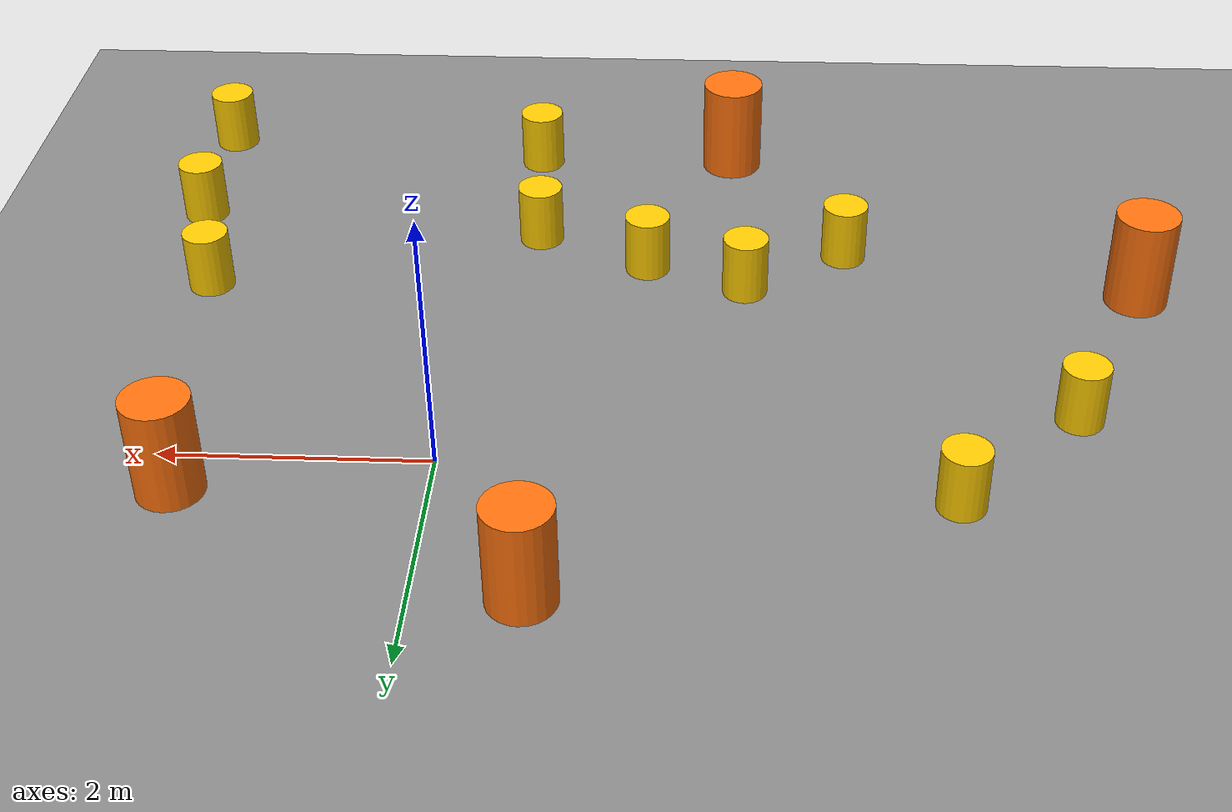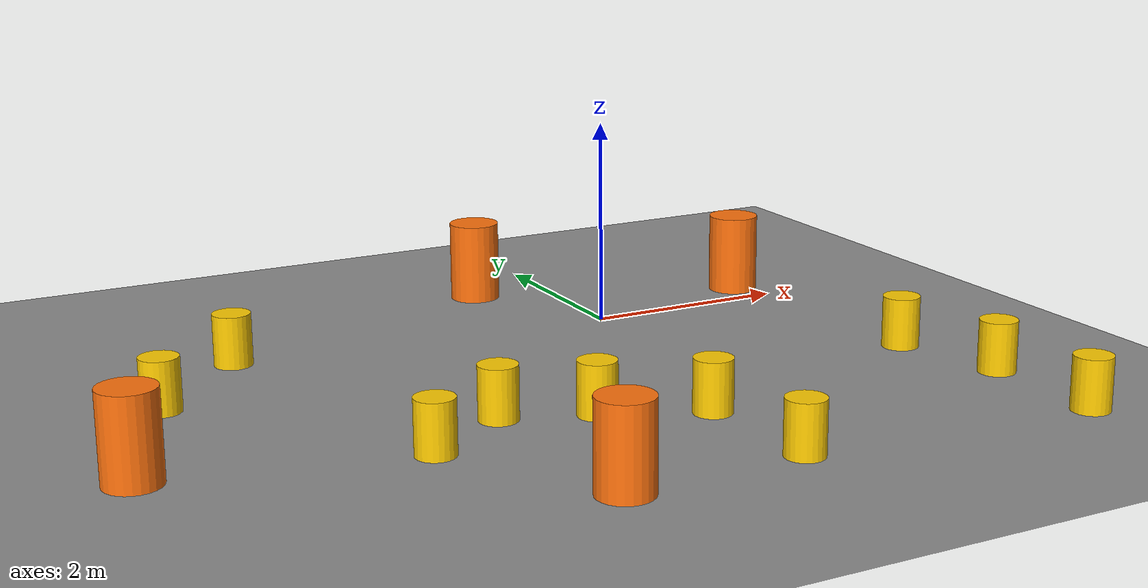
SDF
<sdf version="1.7">
  <world name="default">
    <light name="sun" type="directional">
      <cast_shadows>true</cast_shadows>
      <pose>0 0 10 0 0 0</pose>
      <diffuse>0.8 0.8 0.8 1</diffuse>
      <specular>0.2 0.2 0.2 1</specular>
      <attenuation>
        <range>1000</range>
        <constant>0.9</constant>
        <linear>0.01</linear>
        <quadratic>0.001</quadratic>
      </attenuation>
      <direction>-0.5 0.1 -0.9</direction>
    </light>

    <model name="ground_plane">
      <static>true</static>
      <link name="link">
        <collision name="collision">
          <geometry>
            <plane>
              <normal>0 0 1</normal>
              <size>100 100</size>
            </plane>
          </geometry>
        </collision>
        <visual name="visual">
          <cast_shadows>false</cast_shadows>
          <geometry>
            <plane>
              <normal>0 0 1</normal>
              <size>100 100</size>
            </plane>
          </geometry>
          <material>
            <ambient>0.55 0.55 0.55 1</ambient>
            <diffuse>0.55 0.55 0.55 1</diffuse>
          </material>
        </visual>
      </link>
    </model>

    <gravity>0 0 -9.8</gravity>
    <physics name="default_physics" type="ode">
      <max_step_size>0.001</max_step_size>
      <real_time_factor>1</real_time_factor>
      <real_time_update_rate>1000</real_time_update_rate>
    </physics>
    <scene>
      <ambient>0.4 0.4 0.4 1</ambient>
      <background>0.7 0.7 0.7 1</background>
      <shadows>true</shadows>
    </scene>

    <model name="barrel_0">
      <static>true</static>
      <pose>-0.756237 1.39226 0.4 0 0 0</pose>
      <link name="link">
        <collision name="collision">
          <geometry><cylinder><radius>0.25</radius><length>0.8</length></cylinder></geometry>
        </collision>
        <visual name="visual">
          <geometry><cylinder><radius>0.25</radius><length>0.8</length></cylinder></geometry>
          <material><ambient>1.0 0.45 0.05 1</ambient><diffuse>1.0 0.45 0.05 1</diffuse></material>
        </visual>
      </link>
    </model>

    <model name="barrel_1">
      <static>true</static>
      <pose>1.80022 0.377178 0.4 0 0 0</pose>
      <link name="link">
        <collision name="collision">
          <geometry><cylinder><radius>0.25</radius><length>0.8</length></cylinder></geometry>
        </collision>
        <visual name="visual">
          <geometry><cylinder><radius>0.25</radius><length>0.8</length></cylinder></geometry>
          <material><ambient>1.0 0.45 0.05 1</ambient><diffuse>1.0 0.45 0.05 1</diffuse></material>
        </visual>
      </link>
    </model>

    <model name="barrel_2">
      <static>true</static>
      <pose>-5.3108 -2.23708 0.4 0 0 0</pose>
      <link name="link">
        <collision name="collision">
          <geometry><cylinder><radius>0.25</radius><length>0.8</length></cylinder></geometry>
        </collision>
        <visual name="visual">
          <geometry><cylinder><radius>0.25</radius><length>0.8</length></cylinder></geometry>
          <material><ambient>1.0 0.45 0.05 1</ambient><diffuse>1.0 0.45 0.05 1</diffuse></material>
        </visual>
      </link>
    </model>

    <model name="barrel_3">
      <static>true</static>
      <pose>-2.07692 -4.26198 0.4 0 0 0</pose>
      <link name="link">
        <collision name="collision">
          <geometry><cylinder><radius>0.25</radius><length>0.8</length></cylinder></geometry>
        </collision>
        <visual name="visual">
          <geometry><cylinder><radius>0.25</radius><length>0.8</length></cylinder></geometry>
          <material><ambient>1.0 0.45 0.05 1</ambient><diffuse>1.0 0.45 0.05 1</diffuse></material>
        </visual>
      </link>
    </model>

    <model name="cone_0">
      <static>true</static>
      <pose>-2.19745 -2.25046 0.25 0 0 0</pose>
      <link name="link">
        <collision name="collision">
          <geometry><cylinder><radius>0.18</radius><length>0.5</length></cylinder></geometry>
        </collision>
        <visual name="visual">
          <geometry><cylinder><radius>0.18</radius><length>0.5</length></cylinder></geometry>
          <material><ambient>1.0 0.8 0.0 1</ambient><diffuse>1.0 0.8 0.0 1</diffuse></material>
        </visual>
      </link>
    </model>

    <model name="cone_1">
      <static>true</static>
      <pose>-1.40494 -2.55135 0.25 0 0 0</pose>
      <link name="link">
        <collision name="collision">
          <geometry><cylinder><radius>0.18</radius><length>0.5</length></cylinder></geometry>
        </collision>
        <visual name="visual">
          <geometry><cylinder><radius>0.18</radius><length>0.5</length></cylinder></geometry>
          <material><ambient>1.0 0.8 0.0 1</ambient><diffuse>1.0 0.8 0.0 1</diffuse></material>
        </visual>
      </link>
    </model>

    <model name="cone_2">
      <static>true</static>
      <pose>-0.501986 -2.9745 0.25 0 0 0</pose>
      <link name="link">
        <collision name="collision">
          <geometry><cylinder><radius>0.18</radius><length>0.5</length></cylinder></geometry>
        </collision>
        <visual name="visual">
          <geometry><cylinder><radius>0.18</radius><length>0.5</length></cylinder></geometry>
          <material><ambient>1.0 0.8 0.0 1</ambient><diffuse>1.0 0.8 0.0 1</diffuse></material>
        </visual>
      </link>
    </model>

    <model name="cone_3">
      <static>true</static>
      <pose>2.09724 -2.18232 0.25 0 0 0</pose>
      <link name="link">
        <collision name="collision">
          <geometry><cylinder><radius>0.18</radius><length>0.5</length></cylinder></geometry>
        </collision>
        <visual name="visual">
          <geometry><cylinder><radius>0.18</radius><length>0.5</length></cylinder></geometry>
          <material><ambient>1.0 0.8 0.0 1</ambient><diffuse>1.0 0.8 0.0 1</diffuse></material>
        </visual>
      </link>
    </model>

    <model name="cone_4">
      <static>true</static>
      <pose>-3.69879 0.345038 0.25 0 0 0</pose>
      <link name="link">
        <collision name="collision">
          <geometry><cylinder><radius>0.18</radius><length>0.5</length></cylinder></geometry>
        </collision>
        <visual name="visual">
          <geometry><cylinder><radius>0.18</radius><length>0.5</length></cylinder></geometry>
          <material><ambient>1.0 0.8 0.0 1</ambient><diffuse>1.0 0.8 0.0 1</diffuse></material>
        </visual>
      </link>
    </model>

    <model name="cone_5">
      <static>true</static>
      <pose>-0.406438 -4.23374 0.25 0 0 0</pose>
      <link name="link">
        <collision name="collision">
          <geometry><cylinder><radius>0.18</radius><length>0.5</length></cylinder></geometry>
        </collision>
        <visual name="visual">
          <geometry><cylinder><radius>0.18</radius><length>0.5</length></cylinder></geometry>
          <material><ambient>1.0 0.8 0.0 1</ambient><diffuse>1.0 0.8 0.0 1</diffuse></material>
        </visual>
      </link>
    </model>

    <model name="cone_6">
      <static>true</static>
      <pose>2.38815 -3.2576 0.25 0 0 0</pose>
      <link name="link">
        <collision name="collision">
          <geometry><cylinder><radius>0.18</radius><length>0.5</length></cylinder></geometry>
        </collision>
        <visual name="visual">
          <geometry><cylinder><radius>0.18</radius><length>0.5</length></cylinder></geometry>
          <material><ambient>1.0 0.8 0.0 1</ambient><diffuse>1.0 0.8 0.0 1</diffuse></material>
        </visual>
      </link>
    </model>

    <model name="cone_7">
      <static>true</static>
      <pose>2.39316 -4.49605 0.25 0 0 0</pose>
      <link name="link">
        <collision name="collision">
          <geometry><cylinder><radius>0.18</radius><length>0.5</length></cylinder></geometry>
        </collision>
        <visual name="visual">
          <geometry><cylinder><radius>0.18</radius><length>0.5</length></cylinder></geometry>
          <material><ambient>1.0 0.8 0.0 1</ambient><diffuse>1.0 0.8 0.0 1</diffuse></material>
        </visual>
      </link>
    </model>

    <model name="cone_8">
      <static>true</static>
      <pose>-3.00495 -2.78053 0.25 0 0 0</pose>
      <link name="link">
        <collision name="collision">
          <geometry><cylinder><radius>0.18</radius><length>0.5</length></cylinder></geometry>
        </collision>
        <visual name="visual">
          <geometry><cylinder><radius>0.18</radius><length>0.5</length></cylinder></geometry>
          <material><ambient>1.0 0.8 0.0 1</ambient><diffuse>1.0 0.8 0.0 1</diffuse></material>
        </visual>
      </link>
    </model>

    <model name="cone_9">
      <static>true</static>
      <pose>-4.64786 -0.646522 0.25 0 0 0</pose>
      <link name="link">
        <collision name="collision">
          <geometry><cylinder><radius>0.18</radius><length>0.5</length></cylinder></geometry>
        </collision>
        <visual name="visual">
          <geometry><cylinder><radius>0.18</radius><length>0.5</length></cylinder></geometry>
          <material><ambient>1.0 0.8 0.0 1</ambient><diffuse>1.0 0.8 0.0 1</diffuse></material>
        </visual>
      </link>
    </model>
  </world>
</sdf>
